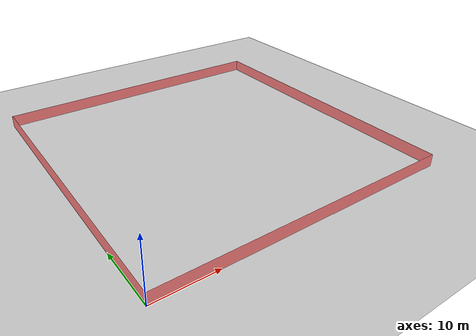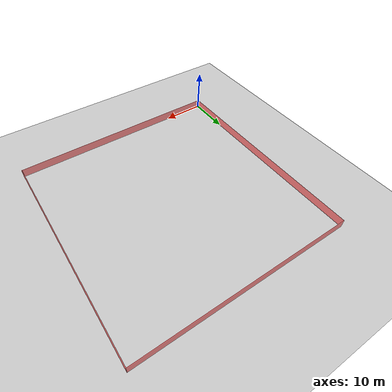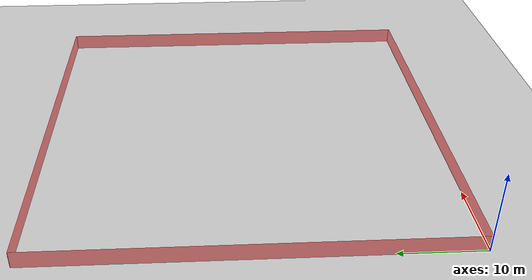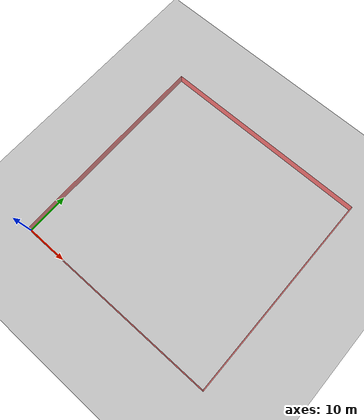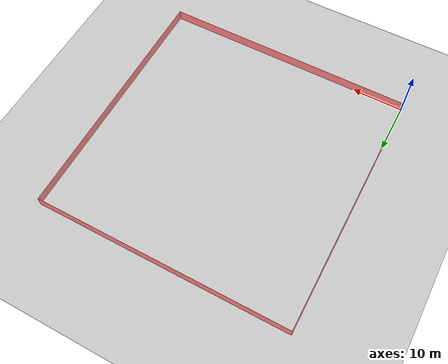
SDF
<?xml version="1.0" ?>
<sdf version="1.8">
  <world name="obstacle_world">

    <physics name="1ms" type="ode">
      <max_step_size>0.001</max_step_size>
      <real_time_factor>1.0</real_time_factor>
    </physics>

    <plugin filename="gz-sim-physics-system" name="gz::sim::systems::Physics"/>
    <plugin filename="gz-sim-user-commands-system" name="gz::sim::systems::UserCommands"/>
    <plugin filename="gz-sim-scene-broadcaster-system" name="gz::sim::systems::SceneBroadcaster"/>
    <plugin filename="gz-sim-imu-system" name="gz::sim::systems::Imu"/>
    <plugin filename="gz-sim-magnetometer-system" name="gz::sim::systems::Magnetometer"/>
    <plugin filename="gz-sim-air-pressure-system" name="gz::sim::systems::AirPressure"/>
    <plugin filename="gz-sim-sensors-system" name="gz::sim::systems::Sensors">
      <render_engine>ogre2</render_engine>
    </plugin>

    <!-- Lighting -->
    <light type="directional" name="sun">
      <cast_shadows>true</cast_shadows>
      <pose>0 0 10 0 0 0</pose>
      <diffuse>1 1 1 1</diffuse>
      <specular>0.5 0.5 0.5 1</specular>
      <attenuation>
        <range>1000</range>
        <constant>0.9</constant>
        <linear>0.01</linear>
        <quadratic>0.001</quadratic>
      </attenuation>
      <direction>-0.5 0.1 -0.9</direction>
    </light>

    <!-- Ground plane -->
    <model name="ground_plane">
      <static>true</static>
      <link name="link">
        <collision name="collision">
          <geometry>
            <plane>
              <normal>0 0 1</normal>
              <size>100 100</size>
            </plane>
          </geometry>
          <surface>
            <friction>
              <ode>
                <mu>100</mu>
                <mu2>50</mu2>
              </ode>
            </friction>
          </surface>
        </collision>
        <visual name="visual">
          <geometry>
            <plane>
              <normal>0 0 1</normal>
              <size>100 100</size>
            </plane>
          </geometry>
          <material>
            <ambient>0.8 0.8 0.8 1</ambient>
            <diffuse>0.8 0.8 0.8 1</diffuse>
            <specular>0.8 0.8 0.8 1</specular>
          </material>
        </visual>
      </link>
    </model>

    <!-- Grid boundaries for visualization -->
    <model name="boundary">
      <static>true</static>
      <pose>25 25 0 0 0 0</pose>
      <link name="link">
        <visual name="north">
          <pose>0 25 1 0 0 0</pose>
          <geometry>
            <box>
              <size>50 0.1 2</size>
            </box>
          </geometry>
          <material>
            <ambient>1 0 0 0.5</ambient>
            <diffuse>1 0 0 0.5</diffuse>
          </material>
        </visual>
        <visual name="south">
          <pose>0 -25 1 0 0 0</pose>
          <geometry>
            <box>
              <size>50 0.1 2</size>
            </box>
          </geometry>
          <material>
            <ambient>1 0 0 0.5</ambient>
            <diffuse>1 0 0 0.5</diffuse>
          </material>
        </visual>
        <visual name="east">
          <pose>25 0 1 0 0 0</pose>
          <geometry>
            <box>
              <size>0.1 50 2</size>
            </box>
          </geometry>
          <material>
            <ambient>1 0 0 0.5</ambient>
            <diffuse>1 0 0 0.5</diffuse>
          </material>
        </visual>
        <visual name="west">
          <pose>-25 0 1 0 0 0</pose>
          <geometry>
            <box>
              <size>0.1 50 2</size>
            </box>
          </geometry>
          <material>
            <ambient>1 0 0 0.5</ambient>
            <diffuse>1 0 0 0.5</diffuse>
          </material>
        </visual>
      </link>
    </model>

  </world>
</sdf>
